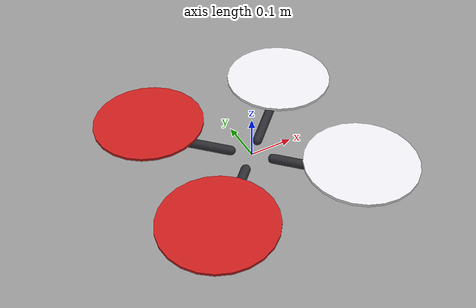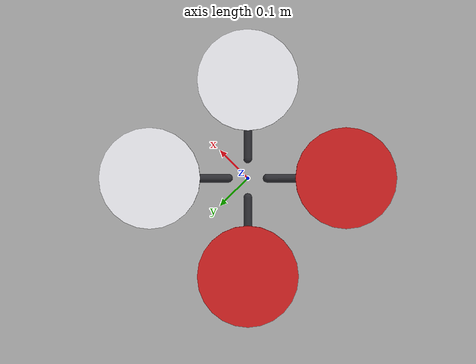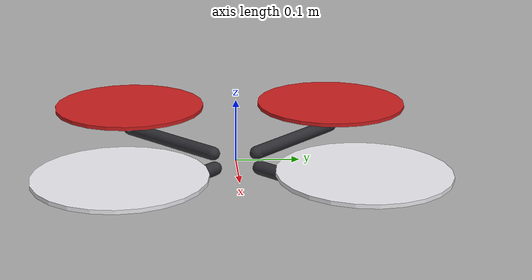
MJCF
<mujoco model="x500">
  <compiler inertiafromgeom="false" autolimits="true" />

  <default>
    <default class="x500">
      <geom density="0" />
      <default class="visual">
        <geom group="2" contype="0" conaffinity="0" />
      </default>
      <default class="collision">
        <!-- The legs and the centre plate are what a landing or a crash touches. -->
        <geom group="3" contype="1" conaffinity="1" />
      </default>
      <site group="5" size="0.01" />
    </default>
  </default>

  <asset>
    <material name="x500_frame" rgba="0.10 0.10 0.11 1" />
    <material name="x500_arm" rgba="0.18 0.18 0.20 1" />
    <material name="x500_motor" rgba="0.55 0.56 0.58 1" />
    <material name="x500_rotor_front" rgba="0.93 0.93 0.95 1" />
    <material name="x500_rotor_rear" rgba="0.80 0.12 0.12 1" />
    <material name="x500_leg" rgba="0.06 0.06 0.06 1" />
  </asset>

  <worldbody>
    <body name="x500" pos="0 0 0" childclass="x500">
      <freejoint name="base_free" />
      <!-- Substrate convention: `spawn_robot` places, resets and teleports through `base_free`. -->
      <inertial pos="0 0 0" mass="2.0" diaginertia="0.02 0.02 0.04" />
      <camera name="track" pos="-1.6 0 0.8" xyaxes="0 -1 0 1 0 2" mode="trackcom" />

      <!-- Centre plate: the 0.18 x 0.18 x 0.05 m stack of frame plates, FC, battery and companion. -->
      <geom name="centre_plate" class="collision" type="box" size="0.09 0.09 0.025"
            material="x500_frame" />

      <!-- Four arms, hub to rotor axis, at 45 degrees. Capsules so a tumbling frame slides. -->
      <geom name="arm0" class="visual" type="capsule" size="0.011"
            fromto="0.035 -0.035 0 0.174 -0.174 0" material="x500_arm" />
      <geom name="arm1" class="visual" type="capsule" size="0.011"
            fromto="-0.035 0.035 0 -0.174 0.174 0" material="x500_arm" />
      <geom name="arm2" class="visual" type="capsule" size="0.011"
            fromto="0.035 0.035 0 0.174 0.174 0" material="x500_arm" />
      <geom name="arm3" class="visual" type="capsule" size="0.011"
            fromto="-0.035 -0.035 0 -0.174 -0.174 0" material="x500_arm" />

      <!-- Motors: 2216-class cans, 0.028 m radius, sitting on the arm ends. -->
      <geom name="motor0" class="visual" type="cylinder" size="0.014 0.018"
            pos="0.174 -0.174 0.018" material="x500_motor" />
      <geom name="motor1" class="visual" type="cylinder" size="0.014 0.018"
            pos="-0.174 0.174 0.018" material="x500_motor" />
      <geom name="motor2" class="visual" type="cylinder" size="0.014 0.018"
            pos="0.174 0.174 0.018" material="x500_motor" />
      <geom name="motor3" class="visual" type="cylinder" size="0.014 0.018"
            pos="-0.174 -0.174 0.018" material="x500_motor" />

      <geom name="prop0" class="visual" type="cylinder" size="0.127 0.003"
            pos="0.174 -0.174 0.040" material="x500_rotor_front" />
      <geom name="prop1" class="visual" type="cylinder" size="0.127 0.003"
            pos="-0.174 0.174 0.040" material="x500_rotor_rear" />
      <geom name="prop2" class="visual" type="cylinder" size="0.127 0.003"
            pos="0.174 0.174 0.040" material="x500_rotor_front" />
      <geom name="prop3" class="visual" type="cylinder" size="0.127 0.003"
            pos="-0.174 -0.174 0.040" material="x500_rotor_rear" />

      <!-- Landing legs: four struts to 0.13 m below the plate, so the airframe stands on something
           and a landing is a contact rather than the battery hitting the floor. -->
      <geom name="leg0" class="collision" type="capsule" size="0.008"
            fromto="0.06 -0.06 -0.02 0.10 -0.10 -0.15" material="x500_leg" />
      <geom name="leg1" class="collision" type="capsule" size="0.008"
            fromto="-0.06 0.06 -0.02 -0.10 0.10 -0.15" material="x500_leg" />
      <geom name="leg2" class="collision" type="capsule" size="0.008"
            fromto="0.06 0.06 -0.02 0.10 0.10 -0.15" material="x500_leg" />
      <geom name="leg3" class="collision" type="capsule" size="0.008"
            fromto="-0.06 -0.06 -0.02 -0.10 -0.10 -0.15" material="x500_leg" />

      <!-- IMU at the CoM: PX4's EKF2 assumes the IMU is at the body origin, and an offset one adds
           a centrifugal term to every rotation that the estimator will read as acceleration. -->
      <site name="imu" pos="0 0 0" />

      <site name="rotor0" pos="0.174 -0.174 0.040" />
      <site name="rotor1" pos="-0.174 0.174 0.040" />
      <site name="rotor2" pos="0.174 0.174 0.040" />
      <site name="rotor3" pos="-0.174 -0.174 0.040" />
    </body>
  </worldbody>

  <actuator>
    <!-- Thrust in NEWTONS along each rotor site's +z. 0..8.2 N per rotor, from PX4's
         MPC_THR_HOVER 0.6: T/W = 1.67, hover at 60% of full deflection (see header). -->
    <motor class="x500" name="rotor0_thrust" site="rotor0" gear="0 0 1 0 0 0" ctrlrange="0 8.2" />
    <motor class="x500" name="rotor1_thrust" site="rotor1" gear="0 0 1 0 0 0" ctrlrange="0 8.2" />
    <motor class="x500" name="rotor2_thrust" site="rotor2" gear="0 0 1 0 0 0" ctrlrange="0 8.2" />
    <motor class="x500" name="rotor3_thrust" site="rotor3" gear="0 0 1 0 0 0" ctrlrange="0 8.2" />
  </actuator>

  <sensor>
    <!-- Same names the Crazyflie uses, so a consumer is airframe-agnostic. -->
    <gyro name="body_gyro" site="imu" />
    <accelerometer name="body_linacc" site="imu" />
    <framequat name="body_quat" objtype="site" objname="imu" />
  </sensor>

  <keyframe>
    <!-- Hover: 2.0 kg * 9.81 / 4 = 4.905 N per rotor, which is 0.6 of the 8.2 N ctrlrange and
         therefore agrees with PX4's MPC_THR_HOVER. At 0.1 m the legs clear the floor. -->
    <key name="hover" qpos="0 0 0.1 1 0 0 0" ctrl="4.905 4.905 4.905 4.905" />
  </keyframe>
</mujoco>
